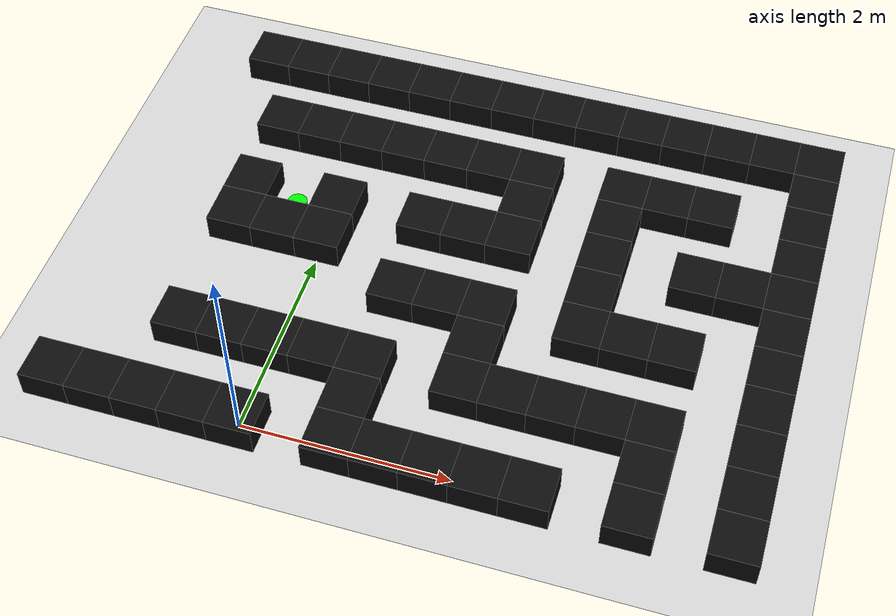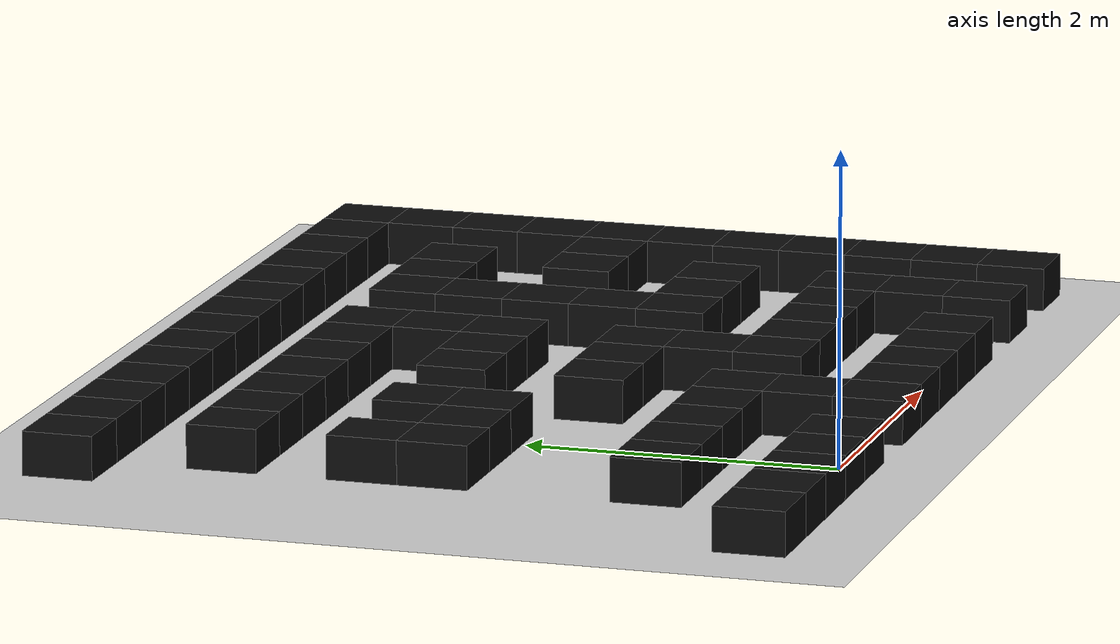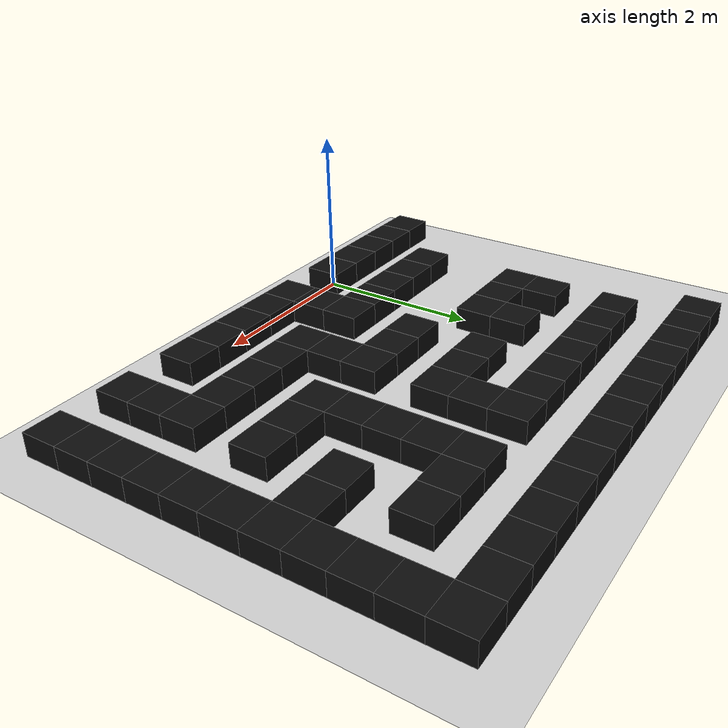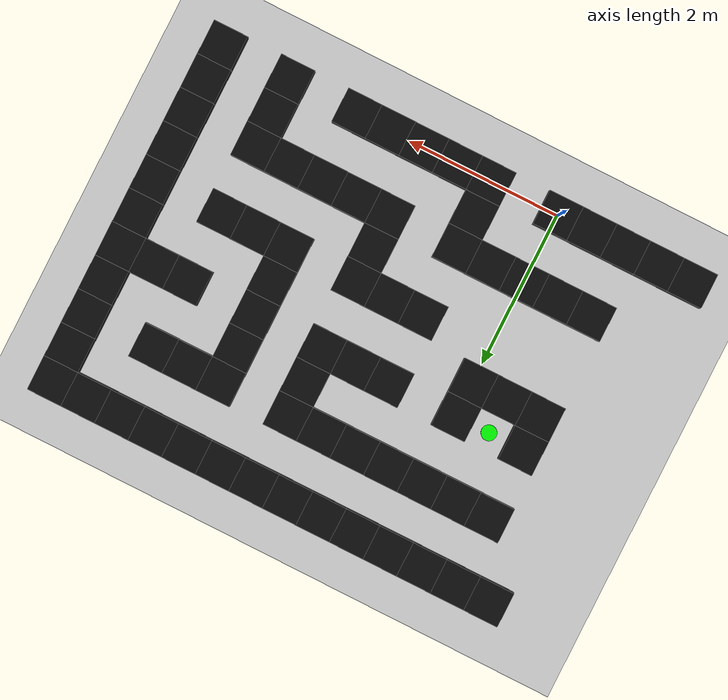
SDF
<sdf version="1.9">
 <world name="complex_maze_world">
  <model name="ground_plane">
   <static>true</static>
   <link name="link">
    <collision name="collision">
     <geometry><plane><normal>0 0 1</normal><size>30 30</size></plane></geometry>
    </collision>
    <visual name="visual">
     <geometry><plane><normal>0 0 1</normal><size>30 30</size></plane></geometry>
     <material><ambient>0.82 0.82 0.82 1</ambient><diffuse>0.82 0.82 0.82 1</diffuse></material>
    </visual>
   </link>
  </model>
  <model name="wall_7">
   <static>true</static>
   <pose>-1.350 4.500 0.140 0 0 0</pose>
   <link name="link">
    <collision name="collision"><geometry><box><size>0.450 0.450 0.280</size></box></geometry></collision>
    <visual name="visual">
     <geometry><box><size>0.450 0.450 0.280</size></box></geometry>
     <material><ambient>0.05 0.05 0.05 1</ambient><diffuse>0.05 0.05 0.05 1</diffuse></material>
    </visual>
   </link>
  </model>
  <model name="wall_8">
   <static>true</static>
   <pose>-0.900 4.500 0.140 0 0 0</pose>
   <link name="link">
    <collision name="collision"><geometry><box><size>0.450 0.450 0.280</size></box></geometry></collision>
    <visual name="visual">
     <geometry><box><size>0.450 0.450 0.280</size></box></geometry>
     <material><ambient>0.05 0.05 0.05 1</ambient><diffuse>0.05 0.05 0.05 1</diffuse></material>
    </visual>
   </link>
  </model>
  <model name="wall_9">
   <static>true</static>
   <pose>-0.450 4.500 0.140 0 0 0</pose>
   <link name="link">
    <collision name="collision"><geometry><box><size>0.450 0.450 0.280</size></box></geometry></collision>
    <visual name="visual">
     <geometry><box><size>0.450 0.450 0.280</size></box></geometry>
     <material><ambient>0.05 0.05 0.05 1</ambient><diffuse>0.05 0.05 0.05 1</diffuse></material>
    </visual>
   </link>
  </model>
  <model name="wall_10">
   <static>true</static>
   <pose>0.000 4.500 0.140 0 0 0</pose>
   <link name="link">
    <collision name="collision"><geometry><box><size>0.450 0.450 0.280</size></box></geometry></collision>
    <visual name="visual">
     <geometry><box><size>0.450 0.450 0.280</size></box></geometry>
     <material><ambient>0.05 0.05 0.05 1</ambient><diffuse>0.05 0.05 0.05 1</diffuse></material>
    </visual>
   </link>
  </model>
  <model name="wall_11">
   <static>true</static>
   <pose>0.450 4.500 0.140 0 0 0</pose>
   <link name="link">
    <collision name="collision"><geometry><box><size>0.450 0.450 0.280</size></box></geometry></collision>
    <visual name="visual">
     <geometry><box><size>0.450 0.450 0.280</size></box></geometry>
     <material><ambient>0.05 0.05 0.05 1</ambient><diffuse>0.05 0.05 0.05 1</diffuse></material>
    </visual>
   </link>
  </model>
  <model name="wall_12">
   <static>true</static>
   <pose>0.900 4.500 0.140 0 0 0</pose>
   <link name="link">
    <collision name="collision"><geometry><box><size>0.450 0.450 0.280</size></box></geometry></collision>
    <visual name="visual">
     <geometry><box><size>0.450 0.450 0.280</size></box></geometry>
     <material><ambient>0.05 0.05 0.05 1</ambient><diffuse>0.05 0.05 0.05 1</diffuse></material>
    </visual>
   </link>
  </model>
  <model name="wall_13">
   <static>true</static>
   <pose>1.350 4.500 0.140 0 0 0</pose>
   <link name="link">
    <collision name="collision"><geometry><box><size>0.450 0.450 0.280</size></box></geometry></collision>
    <visual name="visual">
     <geometry><box><size>0.450 0.450 0.280</size></box></geometry>
     <material><ambient>0.05 0.05 0.05 1</ambient><diffuse>0.05 0.05 0.05 1</diffuse></material>
    </visual>
   </link>
  </model>
  <model name="wall_14">
   <static>true</static>
   <pose>1.800 4.500 0.140 0 0 0</pose>
   <link name="link">
    <collision name="collision"><geometry><box><size>0.450 0.450 0.280</size></box></geometry></collision>
    <visual name="visual">
     <geometry><box><size>0.450 0.450 0.280</size></box></geometry>
     <material><ambient>0.05 0.05 0.05 1</ambient><diffuse>0.05 0.05 0.05 1</diffuse></material>
    </visual>
   </link>
  </model>
  <model name="wall_15">
   <static>true</static>
   <pose>2.250 4.500 0.140 0 0 0</pose>
   <link name="link">
    <collision name="collision"><geometry><box><size>0.450 0.450 0.280</size></box></geometry></collision>
    <visual name="visual">
     <geometry><box><size>0.450 0.450 0.280</size></box></geometry>
     <material><ambient>0.05 0.05 0.05 1</ambient><diffuse>0.05 0.05 0.05 1</diffuse></material>
    </visual>
   </link>
  </model>
  <model name="wall_16">
   <static>true</static>
   <pose>2.700 4.500 0.140 0 0 0</pose>
   <link name="link">
    <collision name="collision"><geometry><box><size>0.450 0.450 0.280</size></box></geometry></collision>
    <visual name="visual">
     <geometry><box><size>0.450 0.450 0.280</size></box></geometry>
     <material><ambient>0.05 0.05 0.05 1</ambient><diffuse>0.05 0.05 0.05 1</diffuse></material>
    </visual>
   </link>
  </model>
  <model name="wall_17">
   <static>true</static>
   <pose>3.150 4.500 0.140 0 0 0</pose>
   <link name="link">
    <collision name="collision"><geometry><box><size>0.450 0.450 0.280</size></box></geometry></collision>
    <visual name="visual">
     <geometry><box><size>0.450 0.450 0.280</size></box></geometry>
     <material><ambient>0.05 0.05 0.05 1</ambient><diffuse>0.05 0.05 0.05 1</diffuse></material>
    </visual>
   </link>
  </model>
  <model name="wall_18">
   <static>true</static>
   <pose>3.600 4.500 0.140 0 0 0</pose>
   <link name="link">
    <collision name="collision"><geometry><box><size>0.450 0.450 0.280</size></box></geometry></collision>
    <visual name="visual">
     <geometry><box><size>0.450 0.450 0.280</size></box></geometry>
     <material><ambient>0.05 0.05 0.05 1</ambient><diffuse>0.05 0.05 0.05 1</diffuse></material>
    </visual>
   </link>
  </model>
  <model name="wall_19">
   <static>true</static>
   <pose>4.050 4.500 0.140 0 0 0</pose>
   <link name="link">
    <collision name="collision"><geometry><box><size>0.450 0.450 0.280</size></box></geometry></collision>
    <visual name="visual">
     <geometry><box><size>0.450 0.450 0.280</size></box></geometry>
     <material><ambient>0.05 0.05 0.05 1</ambient><diffuse>0.05 0.05 0.05 1</diffuse></material>
    </visual>
   </link>
  </model>
  <model name="wall_20">
   <static>true</static>
   <pose>4.500 4.500 0.140 0 0 0</pose>
   <link name="link">
    <collision name="collision"><geometry><box><size>0.450 0.450 0.280</size></box></geometry></collision>
    <visual name="visual">
     <geometry><box><size>0.450 0.450 0.280</size></box></geometry>
     <material><ambient>0.05 0.05 0.05 1</ambient><diffuse>0.05 0.05 0.05 1</diffuse></material>
    </visual>
   </link>
  </model>
  <model name="wall_23">
   <static>true</static>
   <pose>4.500 4.050 0.140 0 0 0</pose>
   <link name="link">
    <collision name="collision"><geometry><box><size>0.450 0.450 0.280</size></box></geometry></collision>
    <visual name="visual">
     <geometry><box><size>0.450 0.450 0.280</size></box></geometry>
     <material><ambient>0.05 0.05 0.05 1</ambient><diffuse>0.05 0.05 0.05 1</diffuse></material>
    </visual>
   </link>
  </model>
  <model name="wall_30">
   <static>true</static>
   <pose>-0.900 3.600 0.140 0 0 0</pose>
   <link name="link">
    <collision name="collision"><geometry><box><size>0.450 0.450 0.280</size></box></geometry></collision>
    <visual name="visual">
     <geometry><box><size>0.450 0.450 0.280</size></box></geometry>
     <material><ambient>0.05 0.05 0.05 1</ambient><diffuse>0.05 0.05 0.05 1</diffuse></material>
    </visual>
   </link>
  </model>
  <model name="wall_31">
   <static>true</static>
   <pose>-0.450 3.600 0.140 0 0 0</pose>
   <link name="link">
    <collision name="collision"><geometry><box><size>0.450 0.450 0.280</size></box></geometry></collision>
    <visual name="visual">
     <geometry><box><size>0.450 0.450 0.280</size></box></geometry>
     <material><ambient>0.05 0.05 0.05 1</ambient><diffuse>0.05 0.05 0.05 1</diffuse></material>
    </visual>
   </link>
  </model>
  <model name="wall_32">
   <static>true</static>
   <pose>0.000 3.600 0.140 0 0 0</pose>
   <link name="link">
    <collision name="collision"><geometry><box><size>0.450 0.450 0.280</size></box></geometry></collision>
    <visual name="visual">
     <geometry><box><size>0.450 0.450 0.280</size></box></geometry>
     <material><ambient>0.05 0.05 0.05 1</ambient><diffuse>0.05 0.05 0.05 1</diffuse></material>
    </visual>
   </link>
  </model>
  <model name="wall_33">
   <static>true</static>
   <pose>0.450 3.600 0.140 0 0 0</pose>
   <link name="link">
    <collision name="collision"><geometry><box><size>0.450 0.450 0.280</size></box></geometry></collision>
    <visual name="visual">
     <geometry><box><size>0.450 0.450 0.280</size></box></geometry>
     <material><ambient>0.05 0.05 0.05 1</ambient><diffuse>0.05 0.05 0.05 1</diffuse></material>
    </visual>
   </link>
  </model>
  <model name="wall_34">
   <static>true</static>
   <pose>0.900 3.600 0.140 0 0 0</pose>
   <link name="link">
    <collision name="collision"><geometry><box><size>0.450 0.450 0.280</size></box></geometry></collision>
    <visual name="visual">
     <geometry><box><size>0.450 0.450 0.280</size></box></geometry>
     <material><ambient>0.05 0.05 0.05 1</ambient><diffuse>0.05 0.05 0.05 1</diffuse></material>
    </visual>
   </link>
  </model>
  <model name="wall_35">
   <static>true</static>
   <pose>1.350 3.600 0.140 0 0 0</pose>
   <link name="link">
    <collision name="collision"><geometry><box><size>0.450 0.450 0.280</size></box></geometry></collision>
    <visual name="visual">
     <geometry><box><size>0.450 0.450 0.280</size></box></geometry>
     <material><ambient>0.05 0.05 0.05 1</ambient><diffuse>0.05 0.05 0.05 1</diffuse></material>
    </visual>
   </link>
  </model>
  <model name="wall_36">
   <static>true</static>
   <pose>1.800 3.600 0.140 0 0 0</pose>
   <link name="link">
    <collision name="collision"><geometry><box><size>0.450 0.450 0.280</size></box></geometry></collision>
    <visual name="visual">
     <geometry><box><size>0.450 0.450 0.280</size></box></geometry>
     <material><ambient>0.05 0.05 0.05 1</ambient><diffuse>0.05 0.05 0.05 1</diffuse></material>
    </visual>
   </link>
  </model>
  <model name="wall_37">
   <static>true</static>
   <pose>2.700 3.600 0.140 0 0 0</pose>
   <link name="link">
    <collision name="collision"><geometry><box><size>0.450 0.450 0.280</size></box></geometry></collision>
    <visual name="visual">
     <geometry><box><size>0.450 0.450 0.280</size></box></geometry>
     <material><ambient>0.05 0.05 0.05 1</ambient><diffuse>0.05 0.05 0.05 1</diffuse></material>
    </visual>
   </link>
  </model>
  <model name="wall_38">
   <static>true</static>
   <pose>3.150 3.600 0.140 0 0 0</pose>
   <link name="link">
    <collision name="collision"><geometry><box><size>0.450 0.450 0.280</size></box></geometry></collision>
    <visual name="visual">
     <geometry><box><size>0.450 0.450 0.280</size></box></geometry>
     <material><ambient>0.05 0.05 0.05 1</ambient><diffuse>0.05 0.05 0.05 1</diffuse></material>
    </visual>
   </link>
  </model>
  <model name="wall_39">
   <static>true</static>
   <pose>3.600 3.600 0.140 0 0 0</pose>
   <link name="link">
    <collision name="collision"><geometry><box><size>0.450 0.450 0.280</size></box></geometry></collision>
    <visual name="visual">
     <geometry><box><size>0.450 0.450 0.280</size></box></geometry>
     <material><ambient>0.05 0.05 0.05 1</ambient><diffuse>0.05 0.05 0.05 1</diffuse></material>
    </visual>
   </link>
  </model>
  <model name="wall_40">
   <static>true</static>
   <pose>4.500 3.600 0.140 0 0 0</pose>
   <link name="link">
    <collision name="collision"><geometry><box><size>0.450 0.450 0.280</size></box></geometry></collision>
    <visual name="visual">
     <geometry><box><size>0.450 0.450 0.280</size></box></geometry>
     <material><ambient>0.05 0.05 0.05 1</ambient><diffuse>0.05 0.05 0.05 1</diffuse></material>
    </visual>
   </link>
  </model>
  <model name="wall_43">
   <static>true</static>
   <pose>1.800 3.150 0.140 0 0 0</pose>
   <link name="link">
    <collision name="collision"><geometry><box><size>0.450 0.450 0.280</size></box></geometry></collision>
    <visual name="visual">
     <geometry><box><size>0.450 0.450 0.280</size></box></geometry>
     <material><ambient>0.05 0.05 0.05 1</ambient><diffuse>0.05 0.05 0.05 1</diffuse></material>
    </visual>
   </link>
  </model>
  <model name="wall_44">
   <static>true</static>
   <pose>2.700 3.150 0.140 0 0 0</pose>
   <link name="link">
    <collision name="collision"><geometry><box><size>0.450 0.450 0.280</size></box></geometry></collision>
    <visual name="visual">
     <geometry><box><size>0.450 0.450 0.280</size></box></geometry>
     <material><ambient>0.05 0.05 0.05 1</ambient><diffuse>0.05 0.05 0.05 1</diffuse></material>
    </visual>
   </link>
  </model>
  <model name="wall_45">
   <static>true</static>
   <pose>4.500 3.150 0.140 0 0 0</pose>
   <link name="link">
    <collision name="collision"><geometry><box><size>0.450 0.450 0.280</size></box></geometry></collision>
    <visual name="visual">
     <geometry><box><size>0.450 0.450 0.280</size></box></geometry>
     <material><ambient>0.05 0.05 0.05 1</ambient><diffuse>0.05 0.05 0.05 1</diffuse></material>
    </visual>
   </link>
  </model>
  <model name="wall_52">
   <static>true</static>
   <pose>-0.900 2.700 0.140 0 0 0</pose>
   <link name="link">
    <collision name="collision"><geometry><box><size>0.450 0.450 0.280</size></box></geometry></collision>
    <visual name="visual">
     <geometry><box><size>0.450 0.450 0.280</size></box></geometry>
     <material><ambient>0.05 0.05 0.05 1</ambient><diffuse>0.05 0.05 0.05 1</diffuse></material>
    </visual>
   </link>
  </model>
  <model name="start_marker">
   <static>true</static>
   <pose>-0.450 2.700 0.012 0 0 0</pose>
   <link name="link">
    <visual name="visual">
     <geometry><cylinder><radius>0.099</radius><length>0.024</length></cylinder></geometry>
     <material><ambient>0 1 0 1</ambient><diffuse>0 1 0 1</diffuse></material>
    </visual>
   </link>
  </model>
  <model name="wall_53">
   <static>true</static>
   <pose>0.000 2.700 0.140 0 0 0</pose>
   <link name="link">
    <collision name="collision"><geometry><box><size>0.450 0.450 0.280</size></box></geometry></collision>
    <visual name="visual">
     <geometry><box><size>0.450 0.450 0.280</size></box></geometry>
     <material><ambient>0.05 0.05 0.05 1</ambient><diffuse>0.05 0.05 0.05 1</diffuse></material>
    </visual>
   </link>
  </model>
  <model name="wall_54">
   <static>true</static>
   <pose>0.900 2.700 0.140 0 0 0</pose>
   <link name="link">
    <collision name="collision"><geometry><box><size>0.450 0.450 0.280</size></box></geometry></collision>
    <visual name="visual">
     <geometry><box><size>0.450 0.450 0.280</size></box></geometry>
     <material><ambient>0.05 0.05 0.05 1</ambient><diffuse>0.05 0.05 0.05 1</diffuse></material>
    </visual>
   </link>
  </model>
  <model name="wall_55">
   <static>true</static>
   <pose>1.350 2.700 0.140 0 0 0</pose>
   <link name="link">
    <collision name="collision"><geometry><box><size>0.450 0.450 0.280</size></box></geometry></collision>
    <visual name="visual">
     <geometry><box><size>0.450 0.450 0.280</size></box></geometry>
     <material><ambient>0.05 0.05 0.05 1</ambient><diffuse>0.05 0.05 0.05 1</diffuse></material>
    </visual>
   </link>
  </model>
  <model name="wall_56">
   <static>true</static>
   <pose>1.800 2.700 0.140 0 0 0</pose>
   <link name="link">
    <collision name="collision"><geometry><box><size>0.450 0.450 0.280</size></box></geometry></collision>
    <visual name="visual">
     <geometry><box><size>0.450 0.450 0.280</size></box></geometry>
     <material><ambient>0.05 0.05 0.05 1</ambient><diffuse>0.05 0.05 0.05 1</diffuse></material>
    </visual>
   </link>
  </model>
  <model name="wall_57">
   <static>true</static>
   <pose>2.700 2.700 0.140 0 0 0</pose>
   <link name="link">
    <collision name="collision"><geometry><box><size>0.450 0.450 0.280</size></box></geometry></collision>
    <visual name="visual">
     <geometry><box><size>0.450 0.450 0.280</size></box></geometry>
     <material><ambient>0.05 0.05 0.05 1</ambient><diffuse>0.05 0.05 0.05 1</diffuse></material>
    </visual>
   </link>
  </model>
  <model name="wall_58">
   <static>true</static>
   <pose>3.600 2.700 0.140 0 0 0</pose>
   <link name="link">
    <collision name="collision"><geometry><box><size>0.450 0.450 0.280</size></box></geometry></collision>
    <visual name="visual">
     <geometry><box><size>0.450 0.450 0.280</size></box></geometry>
     <material><ambient>0.05 0.05 0.05 1</ambient><diffuse>0.05 0.05 0.05 1</diffuse></material>
    </visual>
   </link>
  </model>
  <model name="wall_59">
   <static>true</static>
   <pose>4.050 2.700 0.140 0 0 0</pose>
   <link name="link">
    <collision name="collision"><geometry><box><size>0.450 0.450 0.280</size></box></geometry></collision>
    <visual name="visual">
     <geometry><box><size>0.450 0.450 0.280</size></box></geometry>
     <material><ambient>0.05 0.05 0.05 1</ambient><diffuse>0.05 0.05 0.05 1</diffuse></material>
    </visual>
   </link>
  </model>
  <model name="wall_60">
   <static>true</static>
   <pose>4.500 2.700 0.140 0 0 0</pose>
   <link name="link">
    <collision name="collision"><geometry><box><size>0.450 0.450 0.280</size></box></geometry></collision>
    <visual name="visual">
     <geometry><box><size>0.450 0.450 0.280</size></box></geometry>
     <material><ambient>0.05 0.05 0.05 1</ambient><diffuse>0.05 0.05 0.05 1</diffuse></material>
    </visual>
   </link>
  </model>
  <model name="wall_63">
   <static>true</static>
   <pose>-0.900 2.250 0.140 0 0 0</pose>
   <link name="link">
    <collision name="collision"><geometry><box><size>0.450 0.450 0.280</size></box></geometry></collision>
    <visual name="visual">
     <geometry><box><size>0.450 0.450 0.280</size></box></geometry>
     <material><ambient>0.05 0.05 0.05 1</ambient><diffuse>0.05 0.05 0.05 1</diffuse></material>
    </visual>
   </link>
  </model>
  <model name="wall_64">
   <static>true</static>
   <pose>-0.450 2.250 0.140 0 0 0</pose>
   <link name="link">
    <collision name="collision"><geometry><box><size>0.450 0.450 0.280</size></box></geometry></collision>
    <visual name="visual">
     <geometry><box><size>0.450 0.450 0.280</size></box></geometry>
     <material><ambient>0.05 0.05 0.05 1</ambient><diffuse>0.05 0.05 0.05 1</diffuse></material>
    </visual>
   </link>
  </model>
  <model name="wall_65">
   <static>true</static>
   <pose>0.000 2.250 0.140 0 0 0</pose>
   <link name="link">
    <collision name="collision"><geometry><box><size>0.450 0.450 0.280</size></box></geometry></collision>
    <visual name="visual">
     <geometry><box><size>0.450 0.450 0.280</size></box></geometry>
     <material><ambient>0.05 0.05 0.05 1</ambient><diffuse>0.05 0.05 0.05 1</diffuse></material>
    </visual>
   </link>
  </model>
  <model name="wall_66">
   <static>true</static>
   <pose>2.700 2.250 0.140 0 0 0</pose>
   <link name="link">
    <collision name="collision"><geometry><box><size>0.450 0.450 0.280</size></box></geometry></collision>
    <visual name="visual">
     <geometry><box><size>0.450 0.450 0.280</size></box></geometry>
     <material><ambient>0.05 0.05 0.05 1</ambient><diffuse>0.05 0.05 0.05 1</diffuse></material>
    </visual>
   </link>
  </model>
  <model name="wall_67">
   <static>true</static>
   <pose>4.500 2.250 0.140 0 0 0</pose>
   <link name="link">
    <collision name="collision"><geometry><box><size>0.450 0.450 0.280</size></box></geometry></collision>
    <visual name="visual">
     <geometry><box><size>0.450 0.450 0.280</size></box></geometry>
     <material><ambient>0.05 0.05 0.05 1</ambient><diffuse>0.05 0.05 0.05 1</diffuse></material>
    </visual>
   </link>
  </model>
  <model name="wall_73">
   <static>true</static>
   <pose>0.900 1.800 0.140 0 0 0</pose>
   <link name="link">
    <collision name="collision"><geometry><box><size>0.450 0.450 0.280</size></box></geometry></collision>
    <visual name="visual">
     <geometry><box><size>0.450 0.450 0.280</size></box></geometry>
     <material><ambient>0.05 0.05 0.05 1</ambient><diffuse>0.05 0.05 0.05 1</diffuse></material>
    </visual>
   </link>
  </model>
  <model name="wall_74">
   <static>true</static>
   <pose>1.350 1.800 0.140 0 0 0</pose>
   <link name="link">
    <collision name="collision"><geometry><box><size>0.450 0.450 0.280</size></box></geometry></collision>
    <visual name="visual">
     <geometry><box><size>0.450 0.450 0.280</size></box></geometry>
     <material><ambient>0.05 0.05 0.05 1</ambient><diffuse>0.05 0.05 0.05 1</diffuse></material>
    </visual>
   </link>
  </model>
  <model name="wall_75">
   <static>true</static>
   <pose>1.800 1.800 0.140 0 0 0</pose>
   <link name="link">
    <collision name="collision"><geometry><box><size>0.450 0.450 0.280</size></box></geometry></collision>
    <visual name="visual">
     <geometry><box><size>0.450 0.450 0.280</size></box></geometry>
     <material><ambient>0.05 0.05 0.05 1</ambient><diffuse>0.05 0.05 0.05 1</diffuse></material>
    </visual>
   </link>
  </model>
  <model name="wall_76">
   <static>true</static>
   <pose>2.700 1.800 0.140 0 0 0</pose>
   <link name="link">
    <collision name="collision"><geometry><box><size>0.450 0.450 0.280</size></box></geometry></collision>
    <visual name="visual">
     <geometry><box><size>0.450 0.450 0.280</size></box></geometry>
     <material><ambient>0.05 0.05 0.05 1</ambient><diffuse>0.05 0.05 0.05 1</diffuse></material>
    </visual>
   </link>
  </model>
  <model name="wall_77">
   <static>true</static>
   <pose>3.150 1.800 0.140 0 0 0</pose>
   <link name="link">
    <collision name="collision"><geometry><box><size>0.450 0.450 0.280</size></box></geometry></collision>
    <visual name="visual">
     <geometry><box><size>0.450 0.450 0.280</size></box></geometry>
     <material><ambient>0.05 0.05 0.05 1</ambient><diffuse>0.05 0.05 0.05 1</diffuse></material>
    </visual>
   </link>
  </model>
  <model name="wall_78">
   <static>true</static>
   <pose>3.600 1.800 0.140 0 0 0</pose>
   <link name="link">
    <collision name="collision"><geometry><box><size>0.450 0.450 0.280</size></box></geometry></collision>
    <visual name="visual">
     <geometry><box><size>0.450 0.450 0.280</size></box></geometry>
     <material><ambient>0.05 0.05 0.05 1</ambient><diffuse>0.05 0.05 0.05 1</diffuse></material>
    </visual>
   </link>
  </model>
  <model name="wall_79">
   <static>true</static>
   <pose>4.500 1.800 0.140 0 0 0</pose>
   <link name="link">
    <collision name="collision"><geometry><box><size>0.450 0.450 0.280</size></box></geometry></collision>
    <visual name="visual">
     <geometry><box><size>0.450 0.450 0.280</size></box></geometry>
     <material><ambient>0.05 0.05 0.05 1</ambient><diffuse>0.05 0.05 0.05 1</diffuse></material>
    </visual>
   </link>
  </model>
  <model name="wall_83">
   <static>true</static>
   <pose>1.800 1.350 0.140 0 0 0</pose>
   <link name="link">
    <collision name="collision"><geometry><box><size>0.450 0.450 0.280</size></box></geometry></collision>
    <visual name="visual">
     <geometry><box><size>0.450 0.450 0.280</size></box></geometry>
     <material><ambient>0.05 0.05 0.05 1</ambient><diffuse>0.05 0.05 0.05 1</diffuse></material>
    </visual>
   </link>
  </model>
  <model name="wall_84">
   <static>true</static>
   <pose>4.500 1.350 0.140 0 0 0</pose>
   <link name="link">
    <collision name="collision"><geometry><box><size>0.450 0.450 0.280</size></box></geometry></collision>
    <visual name="visual">
     <geometry><box><size>0.450 0.450 0.280</size></box></geometry>
     <material><ambient>0.05 0.05 0.05 1</ambient><diffuse>0.05 0.05 0.05 1</diffuse></material>
    </visual>
   </link>
  </model>
  <model name="wall_90">
   <static>true</static>
   <pose>-0.900 0.900 0.140 0 0 0</pose>
   <link name="link">
    <collision name="collision"><geometry><box><size>0.450 0.450 0.280</size></box></geometry></collision>
    <visual name="visual">
     <geometry><box><size>0.450 0.450 0.280</size></box></geometry>
     <material><ambient>0.05 0.05 0.05 1</ambient><diffuse>0.05 0.05 0.05 1</diffuse></material>
    </visual>
   </link>
  </model>
  <model name="wall_91">
   <static>true</static>
   <pose>-0.450 0.900 0.140 0 0 0</pose>
   <link name="link">
    <collision name="collision"><geometry><box><size>0.450 0.450 0.280</size></box></geometry></collision>
    <visual name="visual">
     <geometry><box><size>0.450 0.450 0.280</size></box></geometry>
     <material><ambient>0.05 0.05 0.05 1</ambient><diffuse>0.05 0.05 0.05 1</diffuse></material>
    </visual>
   </link>
  </model>
  <model name="wall_92">
   <static>true</static>
   <pose>0.000 0.900 0.140 0 0 0</pose>
   <link name="link">
    <collision name="collision"><geometry><box><size>0.450 0.450 0.280</size></box></geometry></collision>
    <visual name="visual">
     <geometry><box><size>0.450 0.450 0.280</size></box></geometry>
     <material><ambient>0.05 0.05 0.05 1</ambient><diffuse>0.05 0.05 0.05 1</diffuse></material>
    </visual>
   </link>
  </model>
  <model name="wall_93">
   <static>true</static>
   <pose>0.450 0.900 0.140 0 0 0</pose>
   <link name="link">
    <collision name="collision"><geometry><box><size>0.450 0.450 0.280</size></box></geometry></collision>
    <visual name="visual">
     <geometry><box><size>0.450 0.450 0.280</size></box></geometry>
     <material><ambient>0.05 0.05 0.05 1</ambient><diffuse>0.05 0.05 0.05 1</diffuse></material>
    </visual>
   </link>
  </model>
  <model name="wall_94">
   <static>true</static>
   <pose>0.900 0.900 0.140 0 0 0</pose>
   <link name="link">
    <collision name="collision"><geometry><box><size>0.450 0.450 0.280</size></box></geometry></collision>
    <visual name="visual">
     <geometry><box><size>0.450 0.450 0.280</size></box></geometry>
     <material><ambient>0.05 0.05 0.05 1</ambient><diffuse>0.05 0.05 0.05 1</diffuse></material>
    </visual>
   </link>
  </model>
  <model name="wall_95">
   <static>true</static>
   <pose>1.800 0.900 0.140 0 0 0</pose>
   <link name="link">
    <collision name="collision"><geometry><box><size>0.450 0.450 0.280</size></box></geometry></collision>
    <visual name="visual">
     <geometry><box><size>0.450 0.450 0.280</size></box></geometry>
     <material><ambient>0.05 0.05 0.05 1</ambient><diffuse>0.05 0.05 0.05 1</diffuse></material>
    </visual>
   </link>
  </model>
  <model name="wall_96">
   <static>true</static>
   <pose>2.250 0.900 0.140 0 0 0</pose>
   <link name="link">
    <collision name="collision"><geometry><box><size>0.450 0.450 0.280</size></box></geometry></collision>
    <visual name="visual">
     <geometry><box><size>0.450 0.450 0.280</size></box></geometry>
     <material><ambient>0.05 0.05 0.05 1</ambient><diffuse>0.05 0.05 0.05 1</diffuse></material>
    </visual>
   </link>
  </model>
  <model name="wall_97">
   <static>true</static>
   <pose>2.700 0.900 0.140 0 0 0</pose>
   <link name="link">
    <collision name="collision"><geometry><box><size>0.450 0.450 0.280</size></box></geometry></collision>
    <visual name="visual">
     <geometry><box><size>0.450 0.450 0.280</size></box></geometry>
     <material><ambient>0.05 0.05 0.05 1</ambient><diffuse>0.05 0.05 0.05 1</diffuse></material>
    </visual>
   </link>
  </model>
  <model name="wall_98">
   <static>true</static>
   <pose>3.150 0.900 0.140 0 0 0</pose>
   <link name="link">
    <collision name="collision"><geometry><box><size>0.450 0.450 0.280</size></box></geometry></collision>
    <visual name="visual">
     <geometry><box><size>0.450 0.450 0.280</size></box></geometry>
     <material><ambient>0.05 0.05 0.05 1</ambient><diffuse>0.05 0.05 0.05 1</diffuse></material>
    </visual>
   </link>
  </model>
  <model name="wall_99">
   <static>true</static>
   <pose>3.600 0.900 0.140 0 0 0</pose>
   <link name="link">
    <collision name="collision"><geometry><box><size>0.450 0.450 0.280</size></box></geometry></collision>
    <visual name="visual">
     <geometry><box><size>0.450 0.450 0.280</size></box></geometry>
     <material><ambient>0.05 0.05 0.05 1</ambient><diffuse>0.05 0.05 0.05 1</diffuse></material>
    </visual>
   </link>
  </model>
  <model name="wall_100">
   <static>true</static>
   <pose>4.500 0.900 0.140 0 0 0</pose>
   <link name="link">
    <collision name="collision"><geometry><box><size>0.450 0.450 0.280</size></box></geometry></collision>
    <visual name="visual">
     <geometry><box><size>0.450 0.450 0.280</size></box></geometry>
     <material><ambient>0.05 0.05 0.05 1</ambient><diffuse>0.05 0.05 0.05 1</diffuse></material>
    </visual>
   </link>
  </model>
  <model name="wall_104">
   <static>true</static>
   <pose>0.900 0.450 0.140 0 0 0</pose>
   <link name="link">
    <collision name="collision"><geometry><box><size>0.450 0.450 0.280</size></box></geometry></collision>
    <visual name="visual">
     <geometry><box><size>0.450 0.450 0.280</size></box></geometry>
     <material><ambient>0.05 0.05 0.05 1</ambient><diffuse>0.05 0.05 0.05 1</diffuse></material>
    </visual>
   </link>
  </model>
  <model name="wall_105">
   <static>true</static>
   <pose>3.600 0.450 0.140 0 0 0</pose>
   <link name="link">
    <collision name="collision"><geometry><box><size>0.450 0.450 0.280</size></box></geometry></collision>
    <visual name="visual">
     <geometry><box><size>0.450 0.450 0.280</size></box></geometry>
     <material><ambient>0.05 0.05 0.05 1</ambient><diffuse>0.05 0.05 0.05 1</diffuse></material>
    </visual>
   </link>
  </model>
  <model name="wall_106">
   <static>true</static>
   <pose>4.500 0.450 0.140 0 0 0</pose>
   <link name="link">
    <collision name="collision"><geometry><box><size>0.450 0.450 0.280</size></box></geometry></collision>
    <visual name="visual">
     <geometry><box><size>0.450 0.450 0.280</size></box></geometry>
     <material><ambient>0.05 0.05 0.05 1</ambient><diffuse>0.05 0.05 0.05 1</diffuse></material>
    </visual>
   </link>
  </model>
  <model name="wall_111">
   <static>true</static>
   <pose>-1.800 0.000 0.140 0 0 0</pose>
   <link name="link">
    <collision name="collision"><geometry><box><size>0.450 0.450 0.280</size></box></geometry></collision>
    <visual name="visual">
     <geometry><box><size>0.450 0.450 0.280</size></box></geometry>
     <material><ambient>0.05 0.05 0.05 1</ambient><diffuse>0.05 0.05 0.05 1</diffuse></material>
    </visual>
   </link>
  </model>
  <model name="wall_112">
   <static>true</static>
   <pose>-1.350 0.000 0.140 0 0 0</pose>
   <link name="link">
    <collision name="collision"><geometry><box><size>0.450 0.450 0.280</size></box></geometry></collision>
    <visual name="visual">
     <geometry><box><size>0.450 0.450 0.280</size></box></geometry>
     <material><ambient>0.05 0.05 0.05 1</ambient><diffuse>0.05 0.05 0.05 1</diffuse></material>
    </visual>
   </link>
  </model>
  <model name="wall_113">
   <static>true</static>
   <pose>-0.900 0.000 0.140 0 0 0</pose>
   <link name="link">
    <collision name="collision"><geometry><box><size>0.450 0.450 0.280</size></box></geometry></collision>
    <visual name="visual">
     <geometry><box><size>0.450 0.450 0.280</size></box></geometry>
     <material><ambient>0.05 0.05 0.05 1</ambient><diffuse>0.05 0.05 0.05 1</diffuse></material>
    </visual>
   </link>
  </model>
  <model name="wall_114">
   <static>true</static>
   <pose>-0.450 0.000 0.140 0 0 0</pose>
   <link name="link">
    <collision name="collision"><geometry><box><size>0.450 0.450 0.280</size></box></geometry></collision>
    <visual name="visual">
     <geometry><box><size>0.450 0.450 0.280</size></box></geometry>
     <material><ambient>0.05 0.05 0.05 1</ambient><diffuse>0.05 0.05 0.05 1</diffuse></material>
    </visual>
   </link>
  </model>
  <model name="wall_115">
   <static>true</static>
   <pose>0.000 0.000 0.140 0 0 0</pose>
   <link name="link">
    <collision name="collision"><geometry><box><size>0.450 0.450 0.280</size></box></geometry></collision>
    <visual name="visual">
     <geometry><box><size>0.450 0.450 0.280</size></box></geometry>
     <material><ambient>0.05 0.05 0.05 1</ambient><diffuse>0.05 0.05 0.05 1</diffuse></material>
    </visual>
   </link>
  </model>
  <model name="wall_116">
   <static>true</static>
   <pose>0.900 0.000 0.140 0 0 0</pose>
   <link name="link">
    <collision name="collision"><geometry><box><size>0.450 0.450 0.280</size></box></geometry></collision>
    <visual name="visual">
     <geometry><box><size>0.450 0.450 0.280</size></box></geometry>
     <material><ambient>0.05 0.05 0.05 1</ambient><diffuse>0.05 0.05 0.05 1</diffuse></material>
    </visual>
   </link>
  </model>
  <model name="wall_117">
   <static>true</static>
   <pose>1.350 0.000 0.140 0 0 0</pose>
   <link name="link">
    <collision name="collision"><geometry><box><size>0.450 0.450 0.280</size></box></geometry></collision>
    <visual name="visual">
     <geometry><box><size>0.450 0.450 0.280</size></box></geometry>
     <material><ambient>0.05 0.05 0.05 1</ambient><diffuse>0.05 0.05 0.05 1</diffuse></material>
    </visual>
   </link>
  </model>
  <model name="wall_118">
   <static>true</static>
   <pose>1.800 0.000 0.140 0 0 0</pose>
   <link name="link">
    <collision name="collision"><geometry><box><size>0.450 0.450 0.280</size></box></geometry></collision>
    <visual name="visual">
     <geometry><box><size>0.450 0.450 0.280</size></box></geometry>
     <material><ambient>0.05 0.05 0.05 1</ambient><diffuse>0.05 0.05 0.05 1</diffuse></material>
    </visual>
   </link>
  </model>
  <model name="wall_119">
   <static>true</static>
   <pose>2.250 0.000 0.140 0 0 0</pose>
   <link name="link">
    <collision name="collision"><geometry><box><size>0.450 0.450 0.280</size></box></geometry></collision>
    <visual name="visual">
     <geometry><box><size>0.450 0.450 0.280</size></box></geometry>
     <material><ambient>0.05 0.05 0.05 1</ambient><diffuse>0.05 0.05 0.05 1</diffuse></material>
    </visual>
   </link>
  </model>
  <model name="wall_120">
   <static>true</static>
   <pose>2.700 0.000 0.140 0 0 0</pose>
   <link name="link">
    <collision name="collision"><geometry><box><size>0.450 0.450 0.280</size></box></geometry></collision>
    <visual name="visual">
     <geometry><box><size>0.450 0.450 0.280</size></box></geometry>
     <material><ambient>0.05 0.05 0.05 1</ambient><diffuse>0.05 0.05 0.05 1</diffuse></material>
    </visual>
   </link>
  </model>
  <model name="wall_121">
   <static>true</static>
   <pose>3.600 0.000 0.140 0 0 0</pose>
   <link name="link">
    <collision name="collision"><geometry><box><size>0.450 0.450 0.280</size></box></geometry></collision>
    <visual name="visual">
     <geometry><box><size>0.450 0.450 0.280</size></box></geometry>
     <material><ambient>0.05 0.05 0.05 1</ambient><diffuse>0.05 0.05 0.05 1</diffuse></material>
    </visual>
   </link>
  </model>
  <model name="wall_122">
   <static>true</static>
   <pose>4.500 0.000 0.140 0 0 0</pose>
   <link name="link">
    <collision name="collision"><geometry><box><size>0.450 0.450 0.280</size></box></geometry></collision>
    <visual name="visual">
     <geometry><box><size>0.450 0.450 0.280</size></box></geometry>
     <material><ambient>0.05 0.05 0.05 1</ambient><diffuse>0.05 0.05 0.05 1</diffuse></material>
    </visual>
   </link>
  </model>
 </world>
</sdf>
